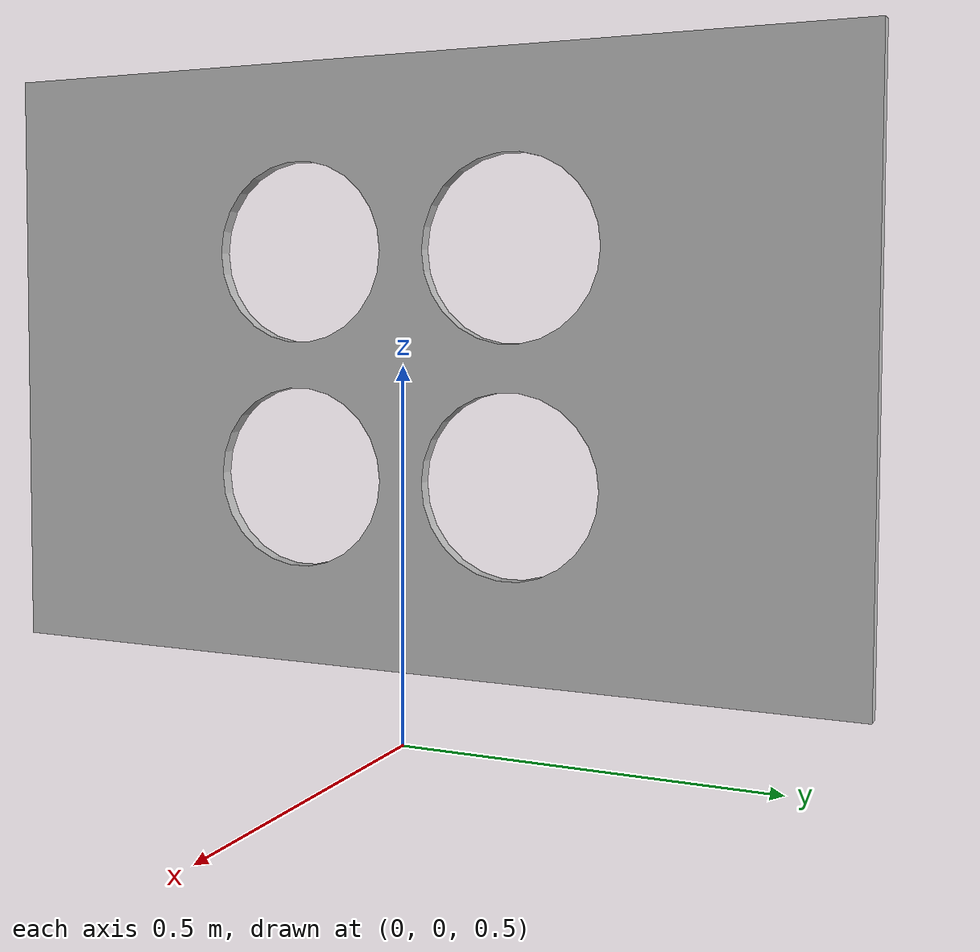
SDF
<?xml version='1.0'?>
<sdf version='1.6'>
  <model name="calibration_chess_pattern">
      <pose>0 0 0.6 0 0 0</pose>
      <static>true</static>
      <link name="body">
        <visual name="visual">
			<pose>0 0 0 0 0 0</pose>
			  <geometry>
				<mesh><uri>model://calibration_chess_pattern/meshes/chess_pattern.dae</uri></mesh>
			  </geometry>
		</visual>
		  <collision name="collision">
			<pose>0 0 0  0 0 0</pose>
			  <geometry>
				<mesh><uri>model://calibration_chess_pattern/meshes/chess_pattern.stl</uri></mesh>
			  </geometry>
		  </collision>
      </link>
    </model>
</sdf>
